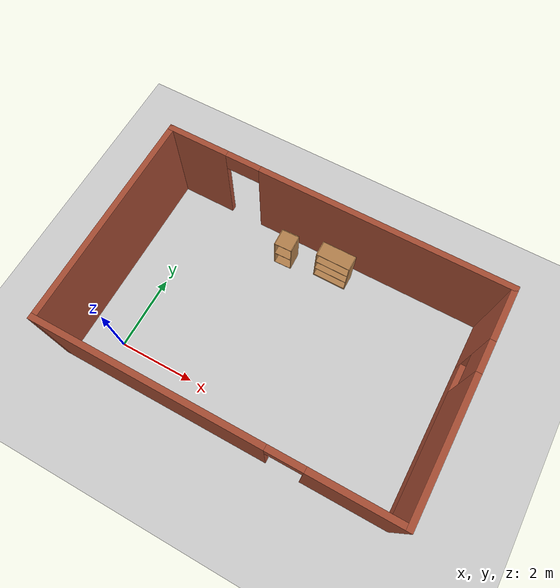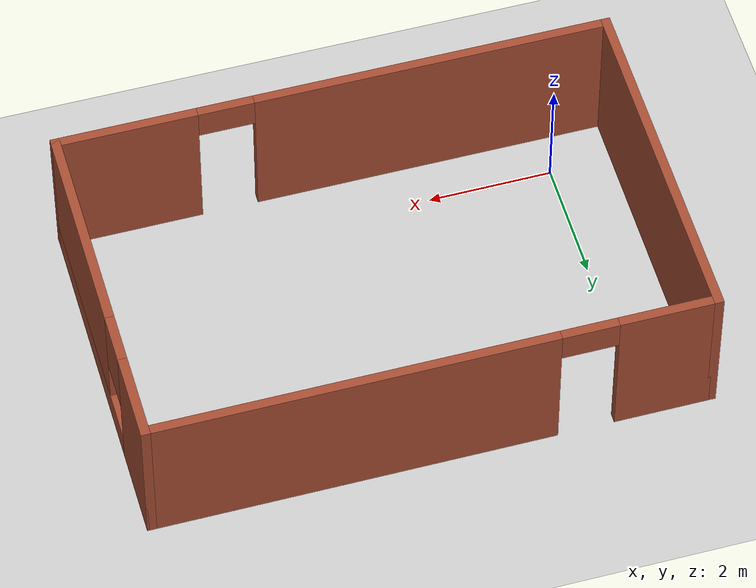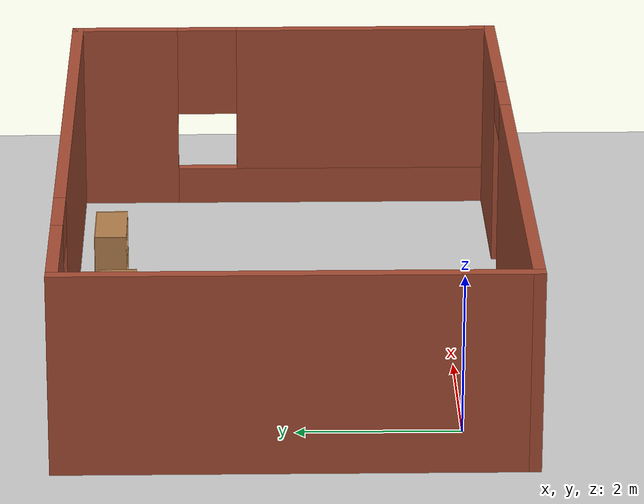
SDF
<sdf version="1.7">
 <world name="default">
  <light name="sun" type="directional">
   <pose>0 0 10 0 -0 0</pose>
   <diffuse>0.8 0.8 0.8 1</diffuse>
   <specular>0.2 0.2 0.2 1</specular>
   <attenuation>
    <range>1000</range>
    <constant>0.9</constant>
    <linear>0.01</linear>
    <quadratic>0.001</quadratic>
   </attenuation>
   <direction>-0.5 0.1 -0.9</direction>
   <spot><inner_angle>0</inner_angle><outer_angle>0</outer_angle><falloff>0</falloff></spot>
  </light>
  <model name="ground_plane">
   <static>1</static>
   <link name="link">
    <collision name="collision">
     <geometry><plane><normal>0 0 1</normal><size>100 100</size></plane></geometry>
     <surface>
      <contact><collide_bitmask>65535</collide_bitmask></contact>
      <friction><ode><mu>100</mu><mu2>50</mu2></ode></friction>
     </surface>
    </collision>
    <visual name="visual">
     <cast_shadows>0</cast_shadows>
     <geometry><plane><normal>0 0 1</normal><size>100 100</size></plane></geometry>
     <material>
      <script><uri>file://media/materials/scripts/gazebo.material</uri><name>Gazebo/Grey</name></script>
     </material>
    </visual>
   </link>
  </model>
  <gravity>0 0 -9.8</gravity>
  <magnetic_field>6e-06 2.3e-05 -4.2e-05</magnetic_field>
  <atmosphere type="adiabatic"/>
  <physics type="ode">
   <max_step_size>0.001</max_step_size>
   <real_time_factor>1</real_time_factor>
   <real_time_update_rate>1000</real_time_update_rate>
  </physics>
  <scene><ambient>0.4 0.4 0.4 1</ambient><background>0.7 0.7 0.7 1</background><shadows>1</shadows></scene>
  <audio><device>default</device></audio>
  <spherical_coordinates>
   <surface_model>EARTH_WGS84</surface_model>
   <latitude_deg>0</latitude_deg>
   <longitude_deg>0</longitude_deg>
   <elevation>0</elevation>
   <heading_deg>0</heading_deg>
  </spherical_coordinates>
  <model name="cabinet">
   <static>1</static>
   <link name="cabinet_bottom_plate">
    <inertial>
     <pose>0 0 -1 0 -0 0</pose>
     <inertia><ixx>2.05</ixx><ixy>0</ixy><ixz>0</ixz><iyy>2.05</iyy><iyz>0</iyz><izz>2.05</izz></inertia>
     <mass>25</mass>
    </inertial>
    <collision name="cabinet_bottom_plate_geom">
     <pose>0 0 0.01 0 -0 0</pose>
     <geometry><box><size>0.45 0.45 0.02</size></box></geometry>
    </collision>
    <visual name="cabinet_bottom_plate_geom_visual">
     <pose>0 0 0.01 0 -0 0</pose>
     <geometry><box><size>0.45 0.45 0.02</size></box></geometry>
     <material>
      <script><uri>file://media/materials/scripts/gazebo.material</uri><name>Gazebo/Wood</name></script>
     </material>
    </visual>
    <collision name="cabinet_bottom_plate_geom_cabinet_back_plate">
     <pose>0.235 0 0.51 0 -0 0</pose>
     <geometry><box><size>0.02 0.45 1.02</size></box></geometry>
    </collision>
    <visual name="cabinet_bottom_plate_geom_cabinet_back_plate_visual">
     <pose>0.235 0 0.51 0 -0 0</pose>
     <geometry><box><size>0.02 0.45 1.02</size></box></geometry>
     <material>
      <script><uri>file://media/materials/scripts/gazebo.material</uri><name>Gazebo/Wood</name></script>
     </material>
    </visual>
    <collision name="cabinet_bottom_plate_geom_cabinet_left_plate">
     <pose>0 0.235 0.51 0 -0 0</pose>
     <geometry><box><size>0.45 0.02 1.02</size></box></geometry>
    </collision>
    <visual name="cabinet_bottom_plate_geom_cabinet_left_plate_visual">
     <pose>0 0.235 0.51 0 -0 0</pose>
     <geometry><box><size>0.45 0.02 1.02</size></box></geometry>
     <material>
      <script><uri>file://media/materials/scripts/gazebo.material</uri><name>Gazebo/Wood</name></script>
     </material>
    </visual>
    <collision name="cabinet_bottom_plate_geom_cabinet_middle_plate">
     <pose>0 0 0.51 0 -0 0</pose>
     <geometry><box><size>0.45 0.45 0.02</size></box></geometry>
    </collision>
    <visual name="cabinet_bottom_plate_geom_cabinet_middle_plate_visual">
     <pose>0 0 0.51 0 -0 0</pose>
     <geometry><box><size>0.45 0.45 0.02</size></box></geometry>
     <material>
      <script><uri>file://media/materials/scripts/gazebo.material</uri><name>Gazebo/Wood</name></script>
     </material>
    </visual>
    <collision name="cabinet_bottom_plate_geom_cabinet_right_plate">
     <pose>0 -0.235 0.51 0 -0 0</pose>
     <geometry><box><size>0.45 0.02 1.02</size></box></geometry>
    </collision>
    <visual name="cabinet_bottom_plate_geom_cabinet_right_plate_visual">
     <pose>0 -0.235 0.51 0 -0 0</pose>
     <geometry><box><size>0.45 0.02 1.02</size></box></geometry>
     <material>
      <script><uri>file://media/materials/scripts/gazebo.material</uri><name>Gazebo/Wood</name></script>
     </material>
    </visual>
    <collision name="cabinet_bottom_plate_geom_cabinet_top_plate">
     <pose>0 0 1.01 0 -0 0</pose>
     <geometry><box><size>0.45 0.45 0.02</size></box></geometry>
    </collision>
    <visual name="cabinet_bottom_plate_geom_cabinet_top_plate_visual">
     <pose>0 0 1.01 0 -0 0</pose>
     <geometry><box><size>0.45 0.45 0.02</size></box></geometry>
     <material>
      <script><uri>file://media/materials/scripts/gazebo.material</uri><name>Gazebo/Wood</name></script>
     </material>
    </visual>
   </link>
   <pose>2.48363 4.15244 0 0 -0 1.59977</pose>
  </model>
  <model name="bookshelf">
   <static>1</static>
   <link name="link">
    <inertial><mass>1</mass></inertial>
    <collision name="back">
     <pose>0 0.005 0.6 0 -0 0</pose>
     <geometry><box><size>0.9 0.01 1.2</size></box></geometry>
    </collision>
    <visual name="visual1">
     <pose>0 0.005 0.6 0 -0 0</pose>
     <geometry><box><size>0.9 0.01 1.2</size></box></geometry>
     <material>
      <script><uri>file://media/materials/scripts/gazebo.material</uri><name>Gazebo/Wood</name></script>
     </material>
    </visual>
    <collision name="left_side">
     <pose>0.45 -0.195 0.6 0 -0 0</pose>
     <geometry><box><size>0.02 0.4 1.2</size></box></geometry>
    </collision>
    <visual name="visual2">
     <pose>0.45 -0.195 0.6 0 -0 0</pose>
     <geometry><box><size>0.02 0.4 1.2</size></box></geometry>
     <material>
      <script><uri>file://media/materials/scripts/gazebo.material</uri><name>Gazebo/Wood</name></script>
     </material>
    </visual>
    <collision name="right_side">
     <pose>-0.45 -0.195 0.6 0 -0 0</pose>
     <geometry><box><size>0.02 0.4 1.2</size></box></geometry>
    </collision>
    <visual name="visual3">
     <pose>-0.45 -0.195 0.6 0 -0 0</pose>
     <geometry><box><size>0.02 0.4 1.2</size></box></geometry>
     <material>
      <script><uri>file://media/materials/scripts/gazebo.material</uri><name>Gazebo/Wood</name></script>
     </material>
    </visual>
    <collision name="bottom">
     <pose>0 -0.195 0.03 0 -0 0</pose>
     <geometry><box><size>0.88 0.4 0.06</size></box></geometry>
    </collision>
    <visual name="visual4">
     <pose>0 -0.195 0.03 0 -0 0</pose>
     <geometry><box><size>0.88 0.4 0.06</size></box></geometry>
     <material>
      <script><uri>file://media/materials/scripts/gazebo.material</uri><name>Gazebo/Wood</name></script>
     </material>
    </visual>
    <collision name="top">
     <pose>0 -0.195 1.19 0 -0 0</pose>
     <geometry><box><size>0.88 0.4 0.02</size></box></geometry>
    </collision>
    <visual name="visual5">
     <pose>0 -0.195 1.19 0 -0 0</pose>
     <geometry><box><size>0.88 0.4 0.02</size></box></geometry>
     <material>
      <script><uri>file://media/materials/scripts/gazebo.material</uri><name>Gazebo/Wood</name></script>
     </material>
    </visual>
    <collision name="low_shelf">
     <pose>0 -0.195 0.43 0 -0 0</pose>
     <geometry><box><size>0.88 0.4 0.02</size></box></geometry>
    </collision>
    <visual name="visual6">
     <pose>0 -0.195 0.43 0 -0 0</pose>
     <geometry><box><size>0.88 0.4 0.02</size></box></geometry>
     <material>
      <script><uri>file://media/materials/scripts/gazebo.material</uri><name>Gazebo/Wood</name></script>
     </material>
    </visual>
    <collision name="high_shelf">
     <pose>0 -0.195 0.8 0 -0 0</pose>
     <geometry><box><size>0.88 0.4 0.02</size></box></geometry>
    </collision>
    <visual name="visual7">
     <pose>0 -0.195 0.8 0 -0 0</pose>
     <geometry><box><size>0.88 0.4 0.02</size></box></geometry>
     <material>
      <script><uri>file://media/materials/scripts/gazebo.material</uri><name>Gazebo/Wood</name></script>
     </material>
    </visual>
   </link>
   <pose>3.80908 4.47489 8.6e-05 0 -0 0</pose>
  </model>
  <model name="test_room">
   <pose>3.34271 2.0161 0 0 -0 0</pose>
   <link name="Wall_16">
    <collision name="Wall_16_Collision">
     <geometry><box><size>5.75 0.15 2.5</size></box></geometry>
     <pose>0 0 1.25 0 -0 0</pose>
    </collision>
    <visual name="Wall_16_Visual">
     <pose>0 0 1.25 0 -0 0</pose>
     <geometry><box><size>5.75 0.15 2.5</size></box></geometry>
     <material>
      <script><uri>file://media/materials/scripts/gazebo.material</uri><name>Gazebo/Bricks</name></script>
      <ambient>1 1 1 1</ambient>
     </material>
     <meta><layer>0</layer></meta>
    </visual>
    <pose>-4.425 0 0 0 -0 1.5708</pose>
   </link>
   <link name="Wall_17">
    <pose>-0 2.8 0 0 -0 0</pose>
    <visual name="Wall_17_Visual_0">
     <pose>-3.68422 0 1.25 0 -0 0</pose>
     <geometry><box><size>1.63156 0.15 2.5</size></box></geometry>
     <material>
      <script><uri>file://media/materials/scripts/gazebo.material</uri><name>Gazebo/Bricks</name></script>
      <ambient>1 1 1 1</ambient>
     </material>
     <meta><layer>0</layer></meta>
    </visual>
    <collision name="Wall_17_Collision_0">
     <geometry><box><size>1.63156 0.15 2.5</size></box></geometry>
     <pose>-3.68422 0 1.25 0 -0 0</pose>
    </collision>
    <visual name="Wall_17_Visual_1">
     <pose>1.26578 0 1.25 0 -0 0</pose>
     <geometry><box><size>6.46844 0.15 2.5</size></box></geometry>
     <material>
      <script><uri>file://media/materials/scripts/gazebo.material</uri><name>Gazebo/Bricks</name></script>
      <ambient>1 1 1 1</ambient>
     </material>
     <meta><layer>0</layer></meta>
    </visual>
    <collision name="Wall_17_Collision_1">
     <geometry><box><size>6.46844 0.15 2.5</size></box></geometry>
     <pose>1.26578 0 1.25 0 -0 0</pose>
    </collision>
    <visual name="Wall_17_Visual_2">
     <pose>-2.41844 0 2.25 0 -0 0</pose>
     <geometry><box><size>0.9 0.15 0.5</size></box></geometry>
     <material>
      <script><uri>file://media/materials/scripts/gazebo.material</uri><name>Gazebo/Bricks</name></script>
      <ambient>1 1 1 1</ambient>
     </material>
     <meta><layer>0</layer></meta>
    </visual>
    <collision name="Wall_17_Collision_2">
     <geometry><box><size>0.9 0.15 0.5</size></box></geometry>
     <pose>-2.41844 0 2.25 0 -0 0</pose>
    </collision>
   </link>
   <link name="Wall_18">
    <pose>4.425 0 0 0 -0 -1.5708</pose>
    <visual name="Wall_18_Visual_0">
     <pose>-2.16127 0 1.25 0 -0 0</pose>
     <geometry><box><size>1.42746 0.15 2.5</size></box></geometry>
     <material>
      <script><uri>file://media/materials/scripts/gazebo.material</uri><name>Gazebo/Bricks</name></script>
      <ambient>1 1 1 1</ambient>
     </material>
     <meta><layer>0</layer></meta>
    </visual>
    <collision name="Wall_18_Collision_0">
     <geometry><box><size>1.42746 0.15 2.5</size></box></geometry>
     <pose>-2.16127 0 1.25 0 -0 0</pose>
    </collision>
    <visual name="Wall_18_Visual_1">
     <pose>0.713732 0 0.25 0 -0 0</pose>
     <geometry><box><size>4.32254 0.15 0.5</size></box></geometry>
     <material>
      <script><uri>file://media/materials/scripts/gazebo.material</uri><name>Gazebo/Bricks</name></script>
      <ambient>1 1 1 1</ambient>
     </material>
     <meta><layer>0</layer></meta>
    </visual>
    <collision name="Wall_18_Collision_1">
     <geometry><box><size>4.32254 0.15 0.5</size></box></geometry>
     <pose>0.713732 0 0.25 0 -0 0</pose>
    </collision>
    <visual name="Wall_18_Visual_2">
     <pose>1.11373 0 1.5 0 -0 0</pose>
     <geometry><box><size>3.52254 0.15 2</size></box></geometry>
     <material>
      <script><uri>file://media/materials/scripts/gazebo.material</uri><name>Gazebo/Bricks</name></script>
      <ambient>1 1 1 1</ambient>
     </material>
     <meta><layer>0</layer></meta>
    </visual>
    <collision name="Wall_18_Collision_2">
     <geometry><box><size>3.52254 0.15 2</size></box></geometry>
     <pose>1.11373 0 1.5 0 -0 0</pose>
    </collision>
    <visual name="Wall_18_Visual_3">
     <pose>-1.04754 0 1.9 0 -0 0</pose>
     <geometry><box><size>0.8 0.15 1.2</size></box></geometry>
     <material>
      <script><uri>file://media/materials/scripts/gazebo.material</uri><name>Gazebo/Bricks</name></script>
      <ambient>1 1 1 1</ambient>
     </material>
     <meta><layer>0</layer></meta>
    </visual>
    <collision name="Wall_18_Collision_3">
     <geometry><box><size>0.8 0.15 1.2</size></box></geometry>
     <pose>-1.04754 0 1.9 0 -0 0</pose>
    </collision>
   </link>
   <link name="Wall_19">
    <pose>-0 -2.8 0 0 -0 3.14159</pose>
    <visual name="Wall_19_Visual_0">
     <pose>-3.34153 0 1.25 0 -0 0</pose>
     <geometry><box><size>2.31694 0.15 2.5</size></box></geometry>
     <material>
      <script><uri>file://media/materials/scripts/gazebo.material</uri><name>Gazebo/Bricks</name></script>
      <ambient>1 1 1 1</ambient>
     </material>
     <meta><layer>0</layer></meta>
    </visual>
    <collision name="Wall_19_Collision_0">
     <geometry><box><size>2.31694 0.15 2.5</size></box></geometry>
     <pose>-3.34153 0 1.25 0 -0 0</pose>
    </collision>
    <visual name="Wall_19_Visual_1">
     <pose>1.60847 0 1.25 0 -0 0</pose>
     <geometry><box><size>5.78306 0.15 2.5</size></box></geometry>
     <material>
      <script><uri>file://media/materials/scripts/gazebo.material</uri><name>Gazebo/Bricks</name></script>
      <ambient>1 1 1 1</ambient>
     </material>
     <meta><layer>0</layer></meta>
    </visual>
    <collision name="Wall_19_Collision_1">
     <geometry><box><size>5.78306 0.15 2.5</size></box></geometry>
     <pose>1.60847 0 1.25 0 -0 0</pose>
    </collision>
    <visual name="Wall_19_Visual_2">
     <pose>-1.73306 0 2.25 0 -0 0</pose>
     <geometry><box><size>0.9 0.15 0.5</size></box></geometry>
     <material>
      <script><uri>file://media/materials/scripts/gazebo.material</uri><name>Gazebo/Bricks</name></script>
      <ambient>1 1 1 1</ambient>
     </material>
     <meta><layer>0</layer></meta>
    </visual>
    <collision name="Wall_19_Collision_2">
     <geometry><box><size>0.9 0.15 0.5</size></box></geometry>
     <pose>-1.73306 0 2.25 0 -0 0</pose>
    </collision>
   </link>
   <static>1</static>
  </model>
 </world>
</sdf>
